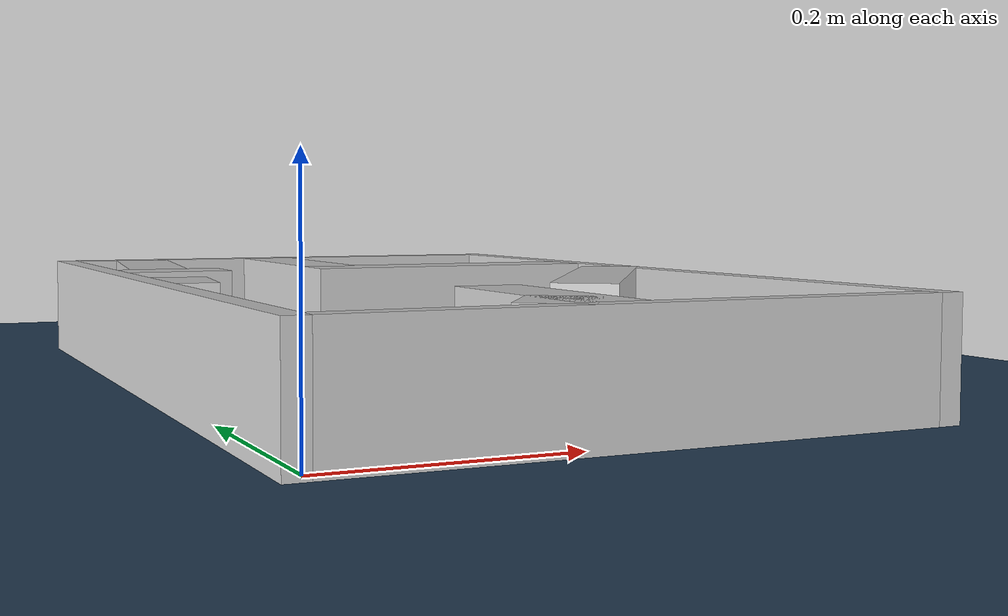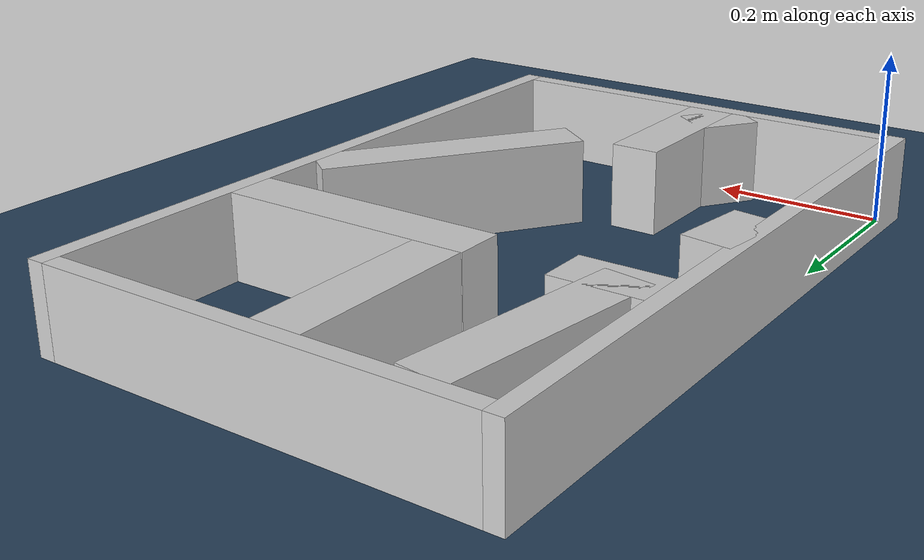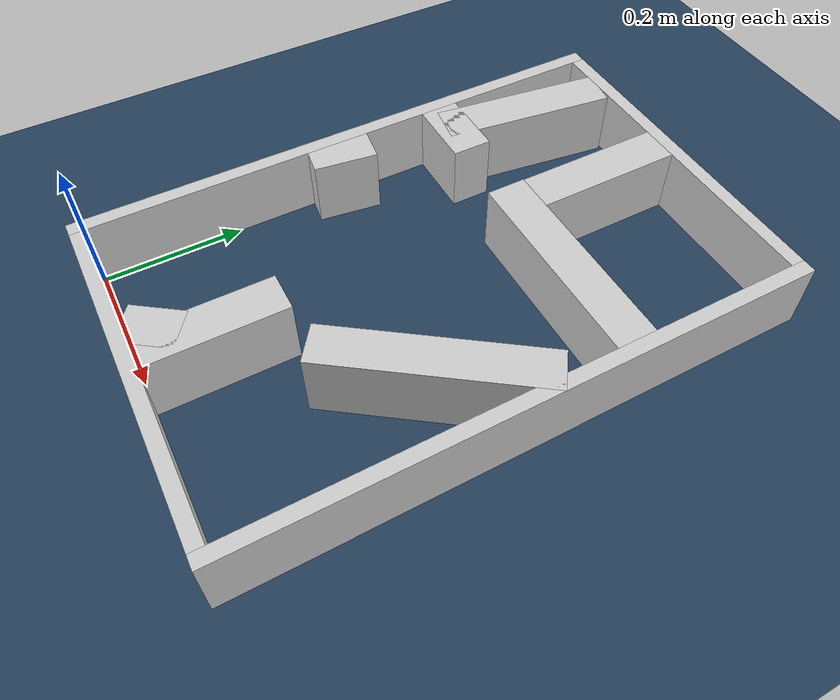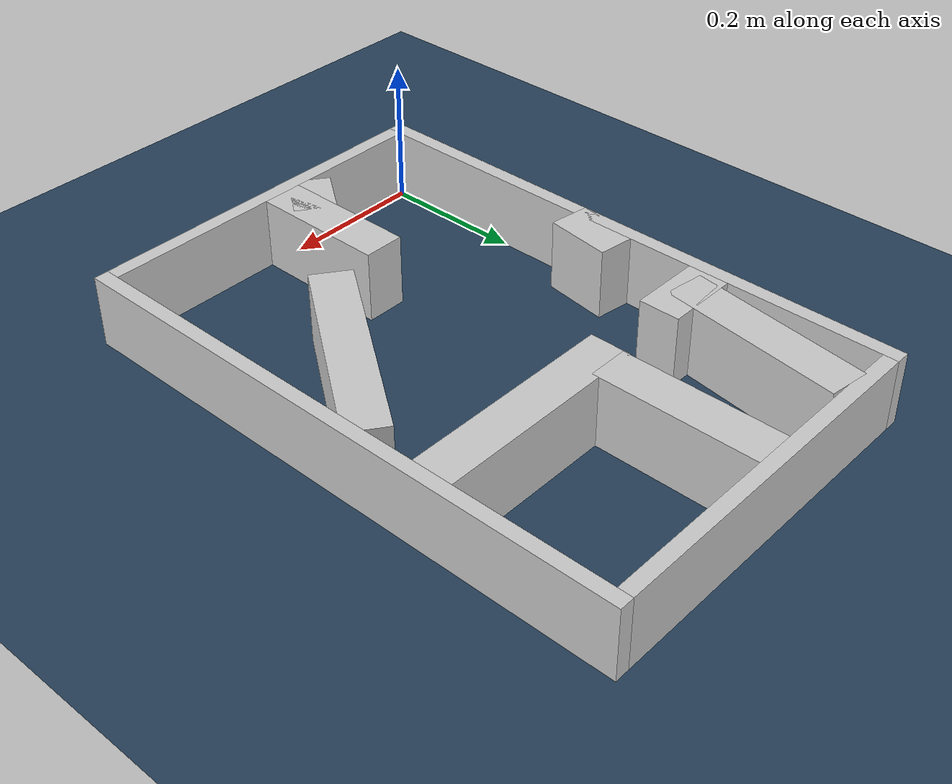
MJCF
<?xml version="1.0" ?>
<mujoco model="generated_real_template">
  <compiler angle="degree"/>
  <option timestep="0.002" integrator="implicitfast" iterations="100" cone="elliptic"/>
  <default>
    <geom density="1"/>
  </default>
  <asset>
    <texture builtin="gradient" height="3072" rgb1="0.3 0.5 0.7" rgb2="0 0 0" type="skybox" width="512"/>
    <texture builtin="checker" height="300" mark="edge" markrgb="0.8 0.8 0.8" name="groundplane" rgb1="0.2 0.3 0.4" rgb2="0.1 0.2 0.3" type="2d" width="300"/>
    <material name="groundplane" reflectance="0.2" texrepeat="5 5" texture="groundplane" texuniform="true"/>
  </asset>
  <worldbody>
    <light dir="0 0 -1" directional="true" pos="0 0 1.5"/>
    <geom name="floor" type="plane" condim="4" friction="0.5 0.005 0.001" material="groundplane" size="0 0 0.05"/>
    <body name="walls">
      <geom name="wall_boundary_left" type="box" condim="4" friction="1.0 0.005 0.0001" rgba="0.8 0.8 0.8 1" pos="-0.010000 0.387500 0.050000" euler="0 0 0.000000" size="0.010000 0.407500 0.050000"/>
      <geom name="wall_boundary_right" type="box" condim="4" friction="1.0 0.005 0.0001" rgba="0.8 0.8 0.8 1" pos="0.500000 0.387500 0.050000" euler="0 0 0.000000" size="0.010000 0.407500 0.050000"/>
      <geom name="wall_boundary_bottom" type="box" condim="4" friction="1.0 0.005 0.0001" rgba="0.8 0.8 0.8 1" pos="0.245000 -0.010000 0.050000" euler="0 0 0.000000" size="0.245000 0.010000 0.050000"/>
      <geom name="wall_boundary_top" type="box" condim="4" friction="1.0 0.005 0.0001" rgba="0.8 0.8 0.8 1" pos="0.245000 0.785000 0.050000" euler="0 0 0.000000" size="0.245000 0.010000 0.050000"/>
      <geom name="wall_inner_1_1" type="box" condim="4" friction="1.0 0.005 0.0001" rgba="0.8 0.8 0.8 1" pos="0.196680 0.030797 0.050000" euler="0 0 54.266798" size="0.037940 0.028500 0.050000"/>
      <geom name="wall_inner_1_2" type="box" condim="4" friction="1.0 0.005 0.0001" rgba="0.8 0.8 0.8 1" pos="0.397202 0.309513 0.050000" euler="0 0 54.266798" size="0.153527 0.028500 0.050000"/>
      <geom name="wall_inner_2_1" type="box" condim="4" friction="1.0 0.005 0.0001" rgba="0.8 0.8 0.8 1" pos="0.054211 0.648351 0.050000" euler="0 0 -97.915781" size="0.127867 0.028500 0.050000"/>
      <geom name="wall_inner_2_2" type="box" condim="4" friction="1.0 0.005 0.0001" rgba="0.8 0.8 0.8 1" pos="0.014582 0.363336 0.050000" euler="0 0 -97.915781" size="0.046127 0.028500 0.050000"/>
      <geom name="wall_inner_3_1" type="box" condim="4" friction="1.0 0.005 0.0001" rgba="0.8 0.8 0.8 1" pos="0.050483 0.532271 0.050000" euler="0 0 0.000000" size="0.050483 0.028500 0.050000"/>
      <geom name="wall_inner_3_2" type="box" condim="4" friction="1.0 0.005 0.0001" rgba="0.8 0.8 0.8 1" pos="0.341242 0.532271 0.050000" euler="0 0 0.000000" size="0.148758 0.028500 0.050000"/>
      <geom name="wall_inner_4_1" type="box" condim="4" friction="1.0 0.005 0.0001" rgba="0.8 0.8 0.8 1" pos="0.221864 0.096018 0.050000" euler="0 0 90.000000" size="0.096018 0.028500 0.050000"/>
      <geom name="wall_inner_4_2" type="box" condim="4" friction="1.0 0.005 0.0001" rgba="0.8 0.8 0.8 1" pos="0.221864 0.662948 0.050000" euler="0 0 90.000000" size="0.112052 0.028500 0.050000"/>
    </body>
  </worldbody>
</mujoco>
